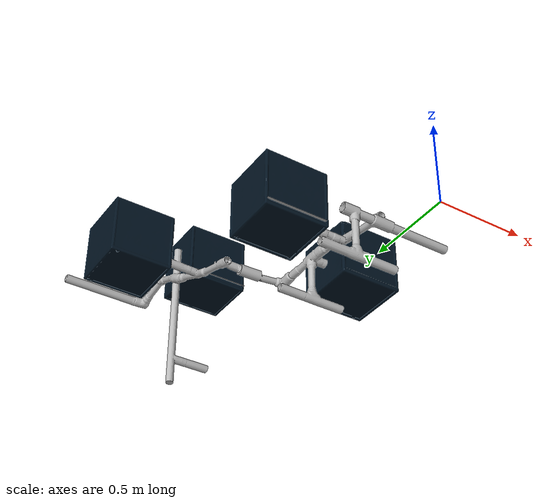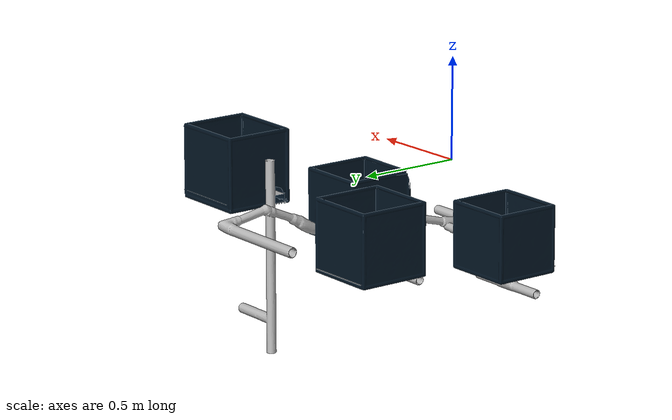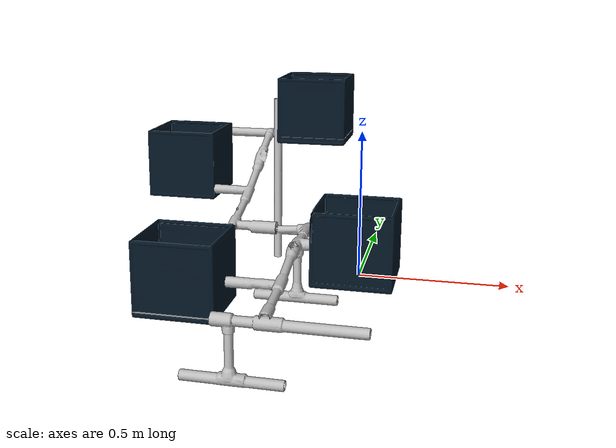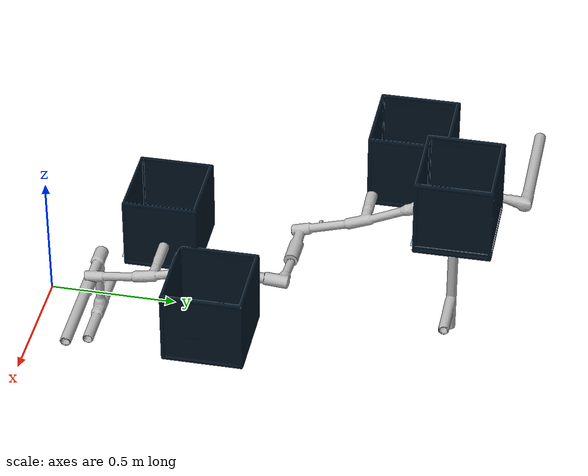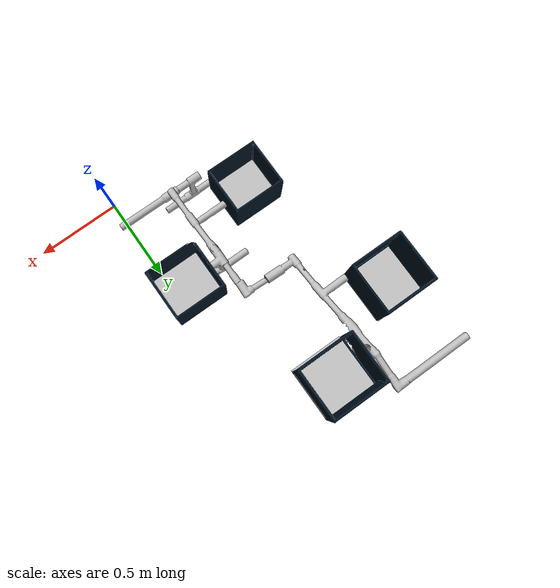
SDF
<?xml version="1.0"?>
<sdf version="1.6">
	<model name="robosub_bin">
		<static>true</static>
    	<pose>0 0 0 0 0 0</pose>
		<link name="robosub_bin">
			<pose>0 0 0 0 0 0</pose>
			<collision name="robosub_bin_col">
				<pose>0 0 0 0 0 0</pose>
				<geometry>
					<mesh>
						<uri>model://robosub_bin/meshes/bin.dae</uri>
					</mesh>
				</geometry>
			</collision>
			<visual name="robosub_bin_vis">
				<pose>0 0 0 0 0 0</pose>
				<geometry>
					<mesh>
						<uri>model://robosub_bin/meshes/bin.dae</uri>
					</mesh>
				</geometry>
			</visual>

		</link>

		<!-- Baskets -->
		<link name="basket_1_link">
			<pose>-0.7432 0.2978 -0.1486 0 0 0</pose>
		</link>
		<link name="basket_2_link">
			<pose>-0.4462 1.5502 0.3349 0 0 0</pose>
		</link>
		<link name="basket_3_link">
			<pose>-0.0937 0.6191 -0.0805 0 0 0</pose>
		</link>
		<link name="basket_4_link">
			<pose>-1.0420 1.2816 0.0919 0 0 0</pose>
		</link>

		<!-- Images -->
		<link name="bin_fire_1_link">
			<pose>-0.7480 0.2883 -0.2803 0 0 0</pose>
		</link>
		<link name="bin_fire_2_link">
			<pose>-0.4330 1.5468 0.2042 0 0 0</pose>
		</link>
		<link name="bin_blood_1_link">
			<pose>-0.0880 0.6145 -0.2168 0 0 0</pose>
		</link>
		<link name="bin_blood_2_link">
			<pose>-1.0381 1.2940 -0.0540 0 0 0</pose>
		</link>

	</model>
</sdf>
